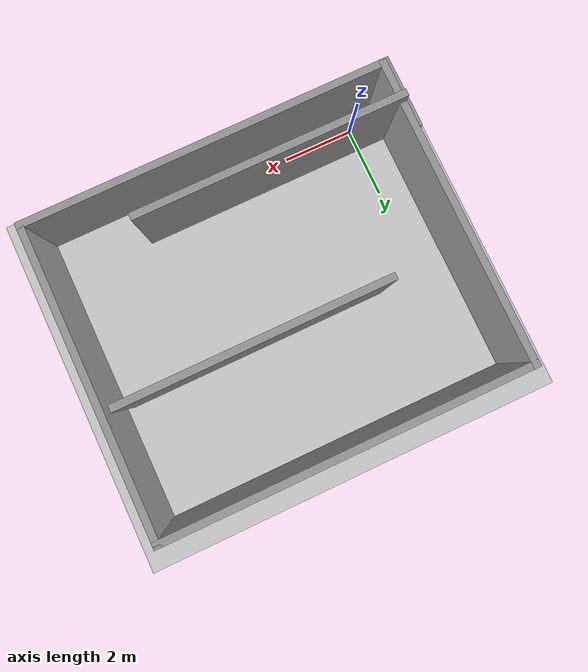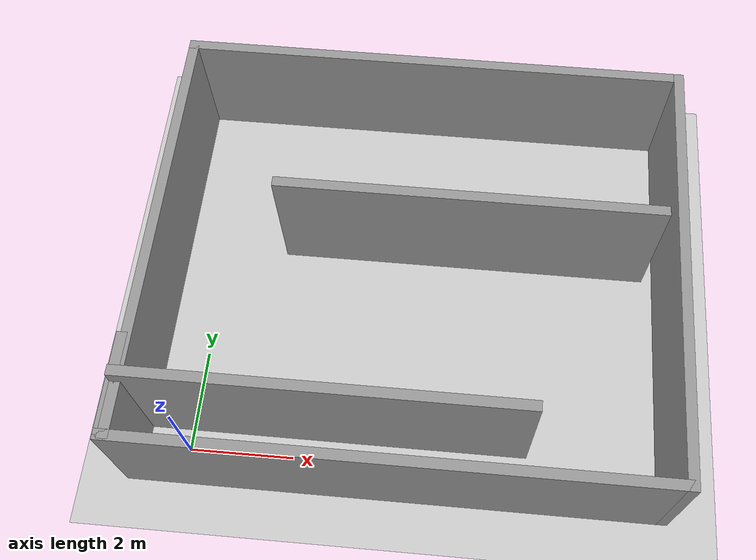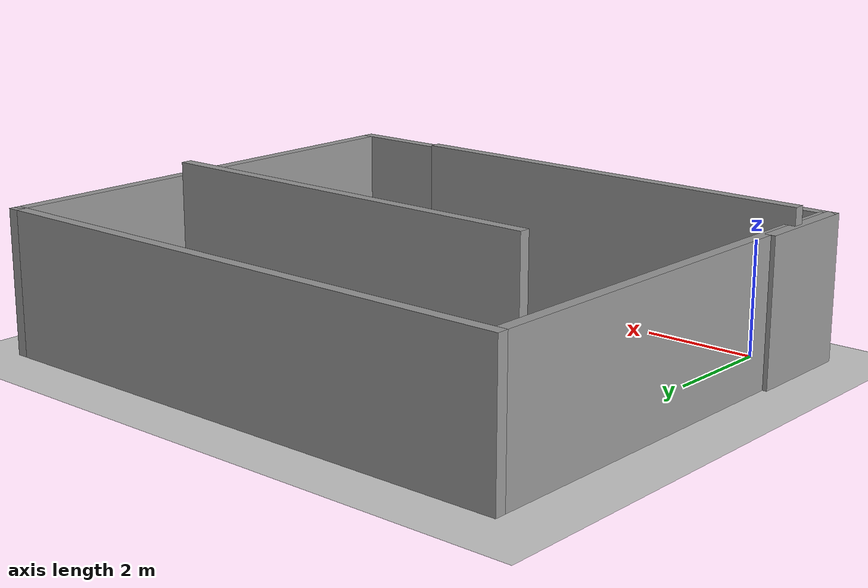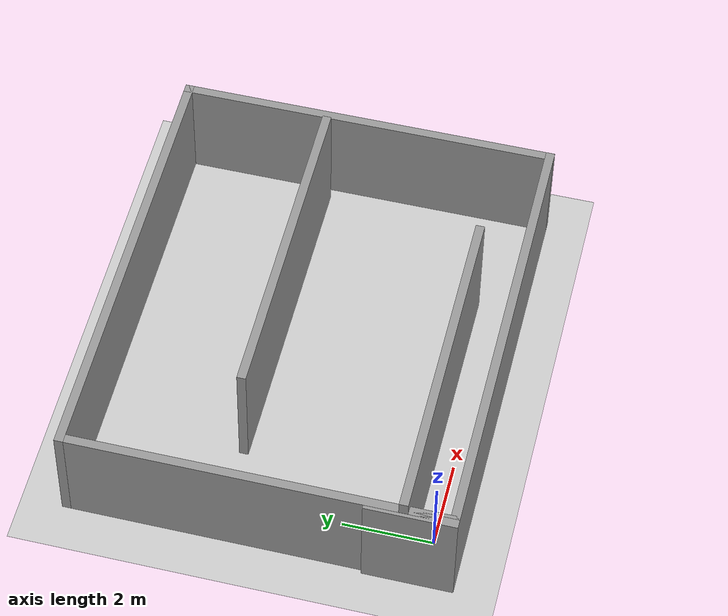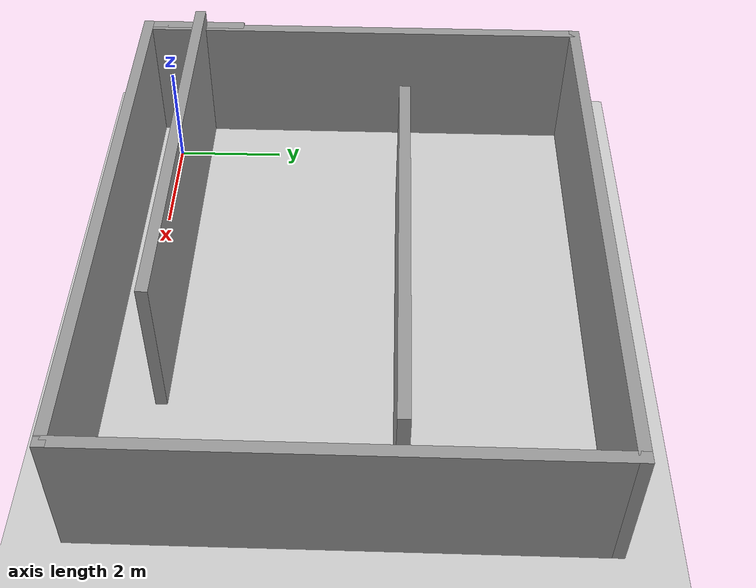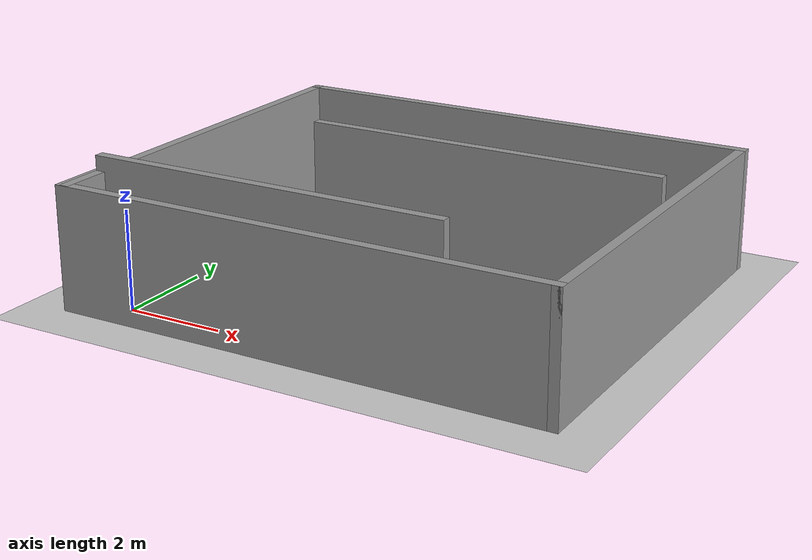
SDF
<sdf version="1.4">
 <world name="default">
  <light name="sun" type="directional">
   <pose>0 0 10 0 -0 0</pose>
   <diffuse>0.8 0.8 0.8 1</diffuse>
   <specular>0.2 0.2 0.2 1</specular>
   <attenuation>
    <range>1000</range>
    <constant>0.9</constant>
    <linear>0.01</linear>
    <quadratic>0.001</quadratic>
   </attenuation>
   <direction>-0.5 0.1 -0.9</direction>
  </light>
  <model name="ground_plane">
   <static>1</static>
   <link name="link">
    <collision name="collision">
     <geometry><plane><normal>0 0 1</normal><size>100 100</size></plane></geometry>
     <surface><friction><ode><mu>100</mu><mu2>50</mu2></ode></friction></surface>
    </collision>
    <visual name="visual">
     <cast_shadows>0</cast_shadows>
     <geometry><plane><normal>0 0 1</normal><size>100 100</size></plane></geometry>
     <material>
      <script><uri>file://media/materials/scripts/gazebo.material</uri><name>Gazebo/Grey</name></script>
     </material>
    </visual>
    <velocity_decay><linear>0</linear><angular>0</angular></velocity_decay>
   </link>
  </model>
  <physics type="ode">
   <max_step_size>0.001</max_step_size>
   <real_time_factor>1</real_time_factor>
   <real_time_update_rate>1000</real_time_update_rate>
   <gravity>0 0 -9.8</gravity>
  </physics>
  <scene><ambient>0.4 0.4 0.4 1</ambient><background>0.7 0.7 0.7 1</background><shadows>1</shadows></scene>
  <spherical_coordinates>
   <surface_model>EARTH_WGS84</surface_model>
   <latitude_deg>0</latitude_deg>
   <longitude_deg>0</longitude_deg>
   <elevation>0</elevation>
   <heading_deg>0</heading_deg>
  </spherical_coordinates>
  <model name="dStar">
   <link name="Wall_19">
    <collision name="Wall_19_Collision">
     <geometry><box><size>1.99412 0.2 2.5</size></box></geometry>
     <pose>0 0 1.25 0 -0 0</pose>
    </collision>
    <visual name="Wall_19_Visual">
     <pose>0 0 1.25 0 -0 0</pose>
     <geometry><box><size>1.99412 0.2 2.5</size></box></geometry>
     <material>
      <script><uri>file://media/materials/scripts/gazebo.material</uri><name>Gazebo/Grey</name></script>
     </material>
    </visual>
    <velocity_decay><linear>0</linear><angular>0</angular></velocity_decay>
    <pose>-0.669115 1.33654 0 0 0 -1.5708</pose>
   </link>
   <link name="Wall_20">
    <collision name="Wall_20_Collision">
     <geometry><box><size>10.2611 0.2 2.5</size></box></geometry>
     <pose>0 0 1.25 0 -0 0</pose>
    </collision>
    <visual name="Wall_20_Visual">
     <pose>0 0 1.25 0 -0 0</pose>
     <geometry><box><size>10.2611 0.2 2.5</size></box></geometry>
     <material>
      <script><uri>file://media/materials/scripts/gazebo.material</uri><name>Gazebo/Grey</name></script>
     </material>
    </visual>
    <velocity_decay><linear>0</linear><angular>0</angular></velocity_decay>
    <pose>4.36145 0.439477 0 0 -0 0</pose>
   </link>
   <link name="Wall_21">
    <collision name="Wall_21_Collision">
     <geometry><box><size>8.59729 0.2 2.5</size></box></geometry>
     <pose>0 0 1.25 0 -0 0</pose>
    </collision>
    <visual name="Wall_21_Visual">
     <pose>0 0 1.25 0 -0 0</pose>
     <geometry><box><size>8.59729 0.2 2.5</size></box></geometry>
     <material>
      <script><uri>file://media/materials/scripts/gazebo.material</uri><name>Gazebo/Grey</name></script>
     </material>
    </visual>
    <velocity_decay><linear>0</linear><angular>0</angular></velocity_decay>
    <pose>9.39201 4.63812 0 0 -0 1.5708</pose>
   </link>
   <link name="Wall_22">
    <collision name="Wall_22_Collision">
     <geometry><box><size>10.1835 0.2 2.5</size></box></geometry>
     <pose>0 0 1.25 0 -0 0</pose>
    </collision>
    <visual name="Wall_22_Visual">
     <pose>0 0 1.25 0 -0 0</pose>
     <geometry><box><size>10.1835 0.2 2.5</size></box></geometry>
     <material>
      <script><uri>file://media/materials/scripts/gazebo.material</uri><name>Gazebo/Grey</name></script>
     </material>
    </visual>
    <velocity_decay><linear>0</linear><angular>0</angular></velocity_decay>
    <pose>4.40027 8.83677 0 0 -0 3.14159</pose>
   </link>
   <link name="Wall_23">
    <collision name="Wall_23_Collision">
     <geometry><box><size>8.56779 0.2 2.5</size></box></geometry>
     <pose>0 0 1.25 0 -0 0</pose>
    </collision>
    <visual name="Wall_23_Visual">
     <pose>0 0 1.25 0 -0 0</pose>
     <geometry><box><size>8.56779 0.2 2.5</size></box></geometry>
     <material>
      <script><uri>file://media/materials/scripts/gazebo.material</uri><name>Gazebo/Grey</name></script>
     </material>
    </visual>
    <velocity_decay><linear>0</linear><angular>0</angular></velocity_decay>
    <pose>-0.591463 4.65287 0 0 0 -1.5708</pose>
   </link>
   <static>1</static>
   <pose>-0.328202 -0.997107 0 0 -0 0</pose>
  </model>
  <model name="grey_wall">
   <static>1</static>
   <link name="link">
    <pose>0 0 1.4 0 -0 0</pose>
    <collision name="collision"><geometry><box><size>7.5 0.2 2.8</size></box></geometry></collision>
    <visual name="visual">
     <cast_shadows>0</cast_shadows>
     <geometry><box><size>7.5 0.2 2.8</size></box></geometry>
     <material>
      <script>
       <uri>model://grey_wall/materials/scripts</uri>
       <uri>model://grey_wall/materials/textures</uri>
       <name>vrc/grey_wall</name>
      </script>
     </material>
    </visual>
    <velocity_decay><linear>0</linear><angular>0</angular></velocity_decay>
   </link>
   <pose>2.73255 0.499022 0 0 -0 0</pose>
  </model>
  <model name="grey_wall_0">
   <static>1</static>
   <link name="link">
    <pose>0 0 1.4 0 -0 0</pose>
    <collision name="collision"><geometry><box><size>7.5 0.2 2.8</size></box></geometry></collision>
    <visual name="visual">
     <cast_shadows>0</cast_shadows>
     <geometry><box><size>7.5 0.2 2.8</size></box></geometry>
     <material>
      <script>
       <uri>model://grey_wall/materials/scripts</uri>
       <uri>model://grey_wall/materials/textures</uri>
       <name>vrc/grey_wall</name>
      </script>
     </material>
    </visual>
    <velocity_decay><linear>0</linear><angular>0</angular></velocity_decay>
   </link>
   <pose>5 4.51147 0 0 -0 0</pose>
  </model>
 </world>
</sdf>
